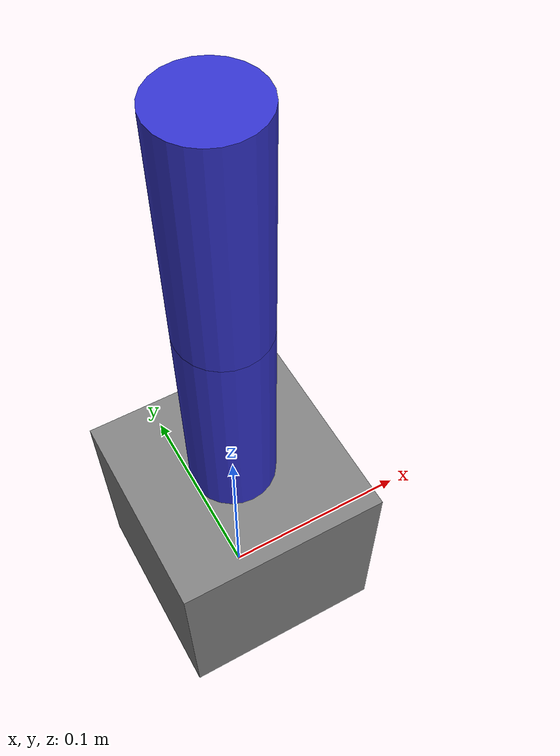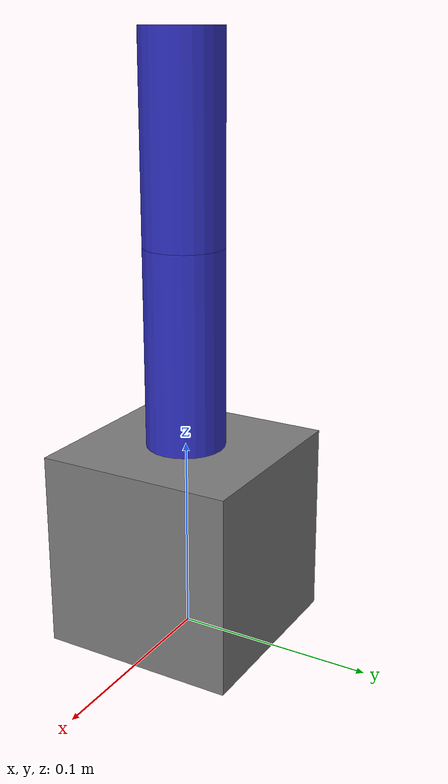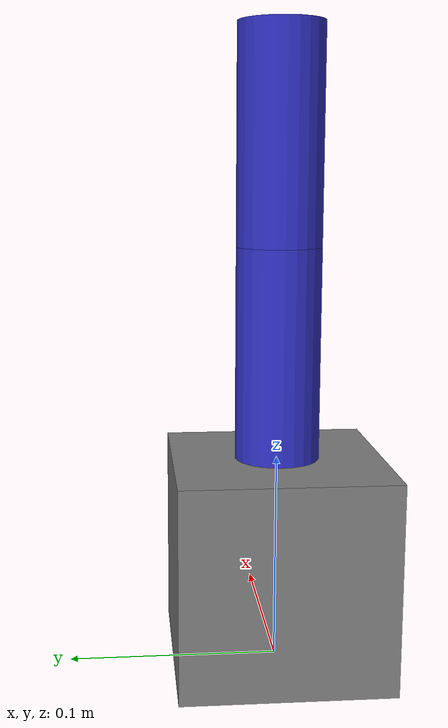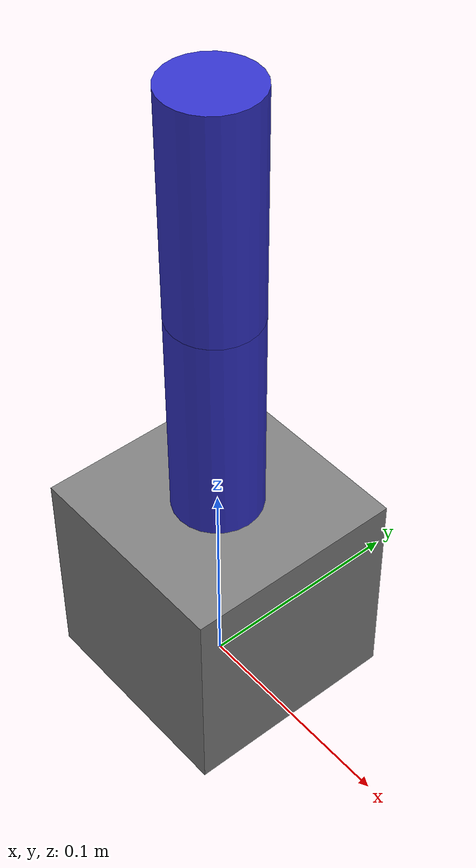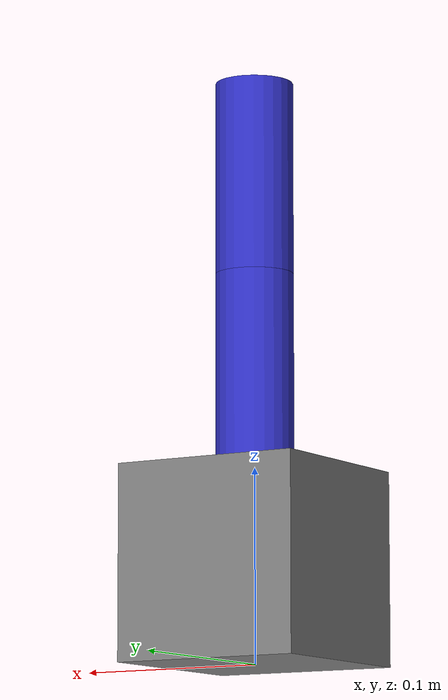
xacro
<?xml version="1.0" ?>
<!-- Copyright (c) 2025 Physical AI Course
     License: MIT
     Target: NVIDIA Jetson Orin Nano - ROS 2 Humble
-->
<robot name="simple_robot" xmlns:xacro="http://www.ros.org/wiki/xacro">

  <!-- Define reusable properties -->
  <xacro:property name="base_mass" value="1.0"/>
  <xacro:property name="link_mass" value="0.5"/>
  <xacro:property name="ee_mass" value="0.3"/>

  <xacro:property name="base_length" value="0.1"/>
  <xacro:property name="base_width" value="0.1"/>
  <xacro:property name="base_height" value="0.1"/>

  <xacro:property name="link_length" value="0.1"/>
  <xacro:property name="link_radius" value="0.02"/>

  <xacro:property name="joint_limit_min" value="-1.5708"/>
  <xacro:property name="joint_limit_max" value="1.5708"/>
  <xacro:property name="joint_effort" value="10"/>
  <xacro:property name="joint_velocity" value="1"/>

  <!-- Base link -->
  <link name="base_link">
    <inertial>
      <mass value="${base_mass}"/>
      <origin xyz="0 0 0"/>
      <inertia ixx="0.01" ixy="0" ixz="0" iyy="0.01" iyz="0" izz="0.01"/>
    </inertial>
    <visual>
      <origin xyz="0 0 ${base_height/2}"/>
      <geometry>
        <box size="${base_length} ${base_width} ${base_height}"/>
      </geometry>
      <material name="base_material">
        <color rgba="0.5 0.5 0.5 1.0"/>
      </material>
    </visual>
    <collision>
      <origin xyz="0 0 ${base_height/2}"/>
      <geometry>
        <box size="${base_length} ${base_width} ${base_height}"/>
      </geometry>
    </collision>
  </link>

  <!-- Macro for creating arm segments -->
  <xacro:macro name="arm_segment" params="name parent joint_name x_offset">
    <joint name="${joint_name}" type="revolute">
      <parent link="${parent}"/>
      <child link="${name}"/>
      <origin xyz="${x_offset} 0 ${link_length}" rpy="0 0 0"/>
      <axis xyz="0 1 0"/>
      <limit lower="${joint_limit_min}" upper="${joint_limit_max}"
             effort="${joint_effort}" velocity="${joint_velocity}"/>
      <dynamics damping="0.1" friction="0.0"/>
    </joint>

    <link name="${name}">
      <inertial>
        <mass value="${link_mass}"/>
        <origin xyz="0 0 ${link_length/2}"/>
        <inertia ixx="0.005" ixy="0" ixz="0" iyy="0.005" iyz="0" izz="0.001"/>
      </inertial>
      <visual>
        <origin xyz="0 0 ${link_length/2}"/>
        <geometry>
          <cylinder radius="${link_radius}" length="${link_length}"/>
        </geometry>
        <material name="link_material">
          <color rgba="0.2 0.2 0.8 1.0"/>
        </material>
      </visual>
      <collision>
        <origin xyz="0 0 ${link_length/2}"/>
        <geometry>
          <cylinder radius="${link_radius}" length="${link_length}"/>
        </geometry>
      </collision>
    </link>
  </xacro:macro>

  <!-- Create arm segments using macro -->
  <xacro:arm_segment name="link_1" parent="base_link"
                     joint_name="joint_1" x_offset="0"/>
  <xacro:arm_segment name="link_2" parent="link_1"
                     joint_name="joint_2" x_offset="0"/>

</robot>
